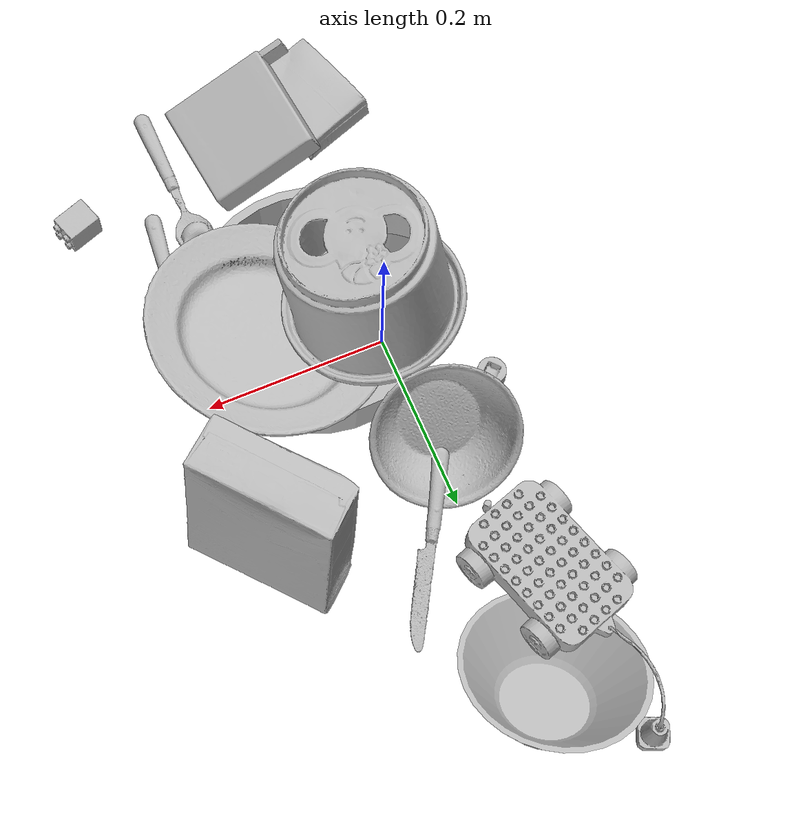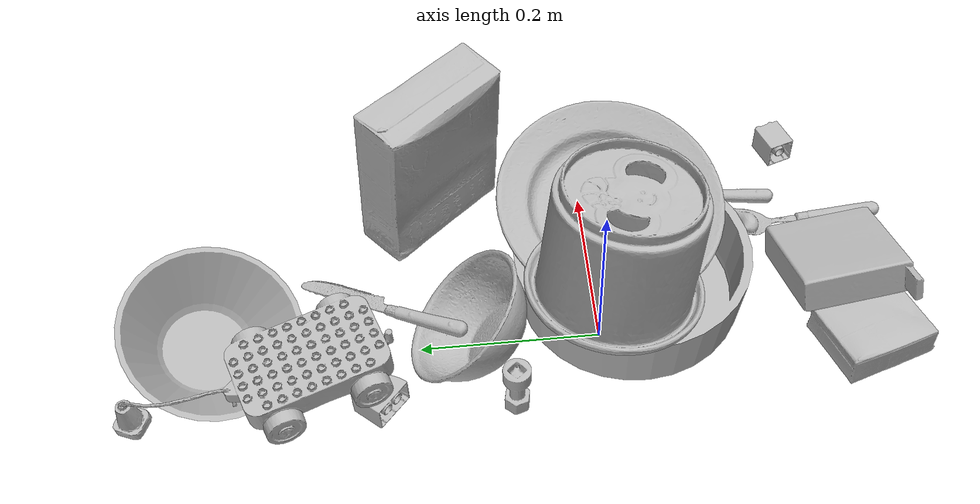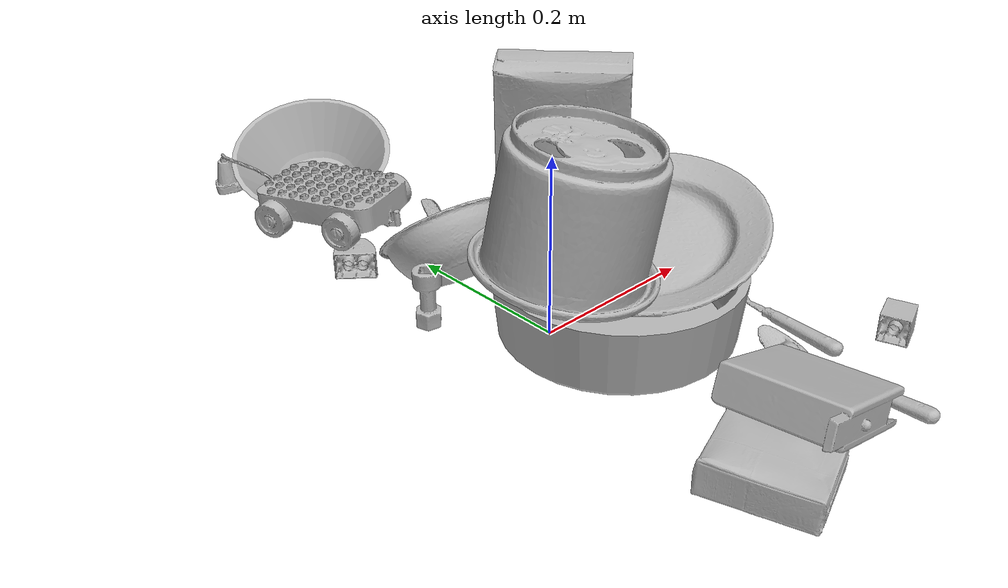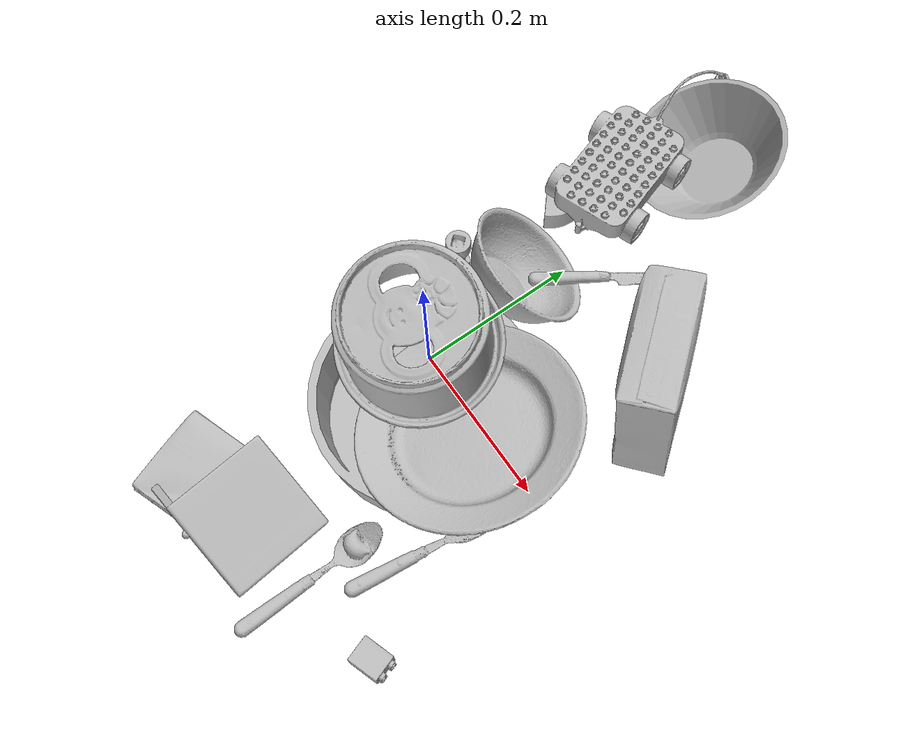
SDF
<sdf version="1.4">
  <world name="default">
    <light name="light1" type="point">
      <pose>0 0 1 0 0 0</pose>
      <diffuse>3 3 3 1</diffuse>
      <specular>3 3 3 1</specular>
    </light>
    <light name="light2" type="point">
      <pose>0 0.5 2 0 0 0</pose>
      <diffuse>1 1 1 1</diffuse>
      <specular>1 1 1 1</specular>
    </light>
    <light name="light3" type="point">
      <pose>0 0.5 2 0 0 0</pose>
      <diffuse>3 3 3 1</diffuse>
      <specular>3 3 3 1</specular>
    </light>
    <scene>
      <ambient>0.7 0.7 0.7</ambient>
    </scene>
    <model name="plate1">
      <link name="link_plate1">
        <collision name="default">
          <geometry>
            <mesh>
              <uri>model://plate/collision_meshes/collision.obj</uri>
              <scale>1.0 1.0 1.0</scale>
            </mesh>
          </geometry>
          <surface>
            <friction>
              <ode>
                <mu>0.5</mu>
                <mu2>0.5</mu2>
              </ode>
            </friction>
          <contact>
        <ode>
            <max_vel>0</max_vel>
            <min_depth>0.0001</min_depth>
            <kp>1e8</kp>
        </ode>
    </contact></surface>
        </collision>
        <visual name="default">
          <geometry>
            <mesh>
              <uri>model://plate/visual_meshes/visual.dae</uri>
              <scale>1.0 1.0 1.0</scale>
            </mesh>
          </geometry>
        </visual>
        <inertial>
          <mass>0.2518167495727539</mass>
          <pose>-0.000604460306931287 0.0002782583760563284 -0.001056198962032795 0.0022187362427659595 -0.003225514577586686 0.4526257716004426</pose>
          <inertia>
            <ixx>0.0011780038</ixx>
            <iyy>0.001166737</iyy>
            <izz>0.0023039998</izz>
            <ixy>0</ixy>
            <ixz>0</ixz>
            <iyz>0</iyz>
          </inertia>
        </inertial>
      </link>
      <pose>0.12130340933799744 -0.025377176702022552 0.08175140619277954 -0.20991426727223256 0.17602870464344783 2.509527441176686</pose>
    </model>
    <model name="plate2">
      <link name="link_plate2">
        <collision name="default">
          <geometry>
            <mesh>
              <uri>model://pan_tefal/collision_meshes/collision.obj</uri>
              <scale>1.0 1.0 1.0</scale>
            </mesh>
          </geometry>
          <surface>
            <friction>
              <ode>
                <mu>0.5</mu>
                <mu2>0.5</mu2>
              </ode>
            </friction>
          <contact>
        <ode>
            <max_vel>0</max_vel>
            <min_depth>0.0001</min_depth>
            <kp>1e8</kp>
        </ode>
    </contact></surface>
        </collision>
        <visual name="default">
          <geometry>
            <mesh>
              <uri>model://pan_tefal/visual_meshes/visual.dae</uri>
              <scale>1.0 1.0 1.0</scale>
            </mesh>
          </geometry>
        </visual>
        <inertial>
          <mass>1.062379002571106</mass>
          <pose>-0.00018001841090153903 3.2791107514640316e-05 -0.008514937944710255 0.0008190335190592257 -0.00033013878845789875 -0.3318630487039029</pose>
          <inertia>
            <ixx>0.0073335525</ixx>
            <iyy>0.007380832</iyy>
            <izz>0.013499655</izz>
            <ixy>0</ixy>
            <ixz>0</ixz>
            <iyz>0</iyz>
          </inertia>
        </inertial>
      </link>
      <pose>0.05741938576102257 -0.042099494487047195 0.03805015981197357 -1.0658867907320177e-06 -1.8436772204305295e-06 -0.8048830366576406</pose>
    </model>
    <model name="bowl1">
      <link name="link_bowl1">
        <collision name="default">
          <geometry>
            <mesh>
              <uri>model://bowl/collision_meshes/collision.obj</uri>
              <scale>1.0 1.0 1.0</scale>
            </mesh>
          </geometry>
          <surface>
            <friction>
              <ode>
                <mu>0.5</mu>
                <mu2>0.5</mu2>
              </ode>
            </friction>
          <contact>
        <ode>
            <max_vel>0</max_vel>
            <min_depth>0.0001</min_depth>
            <kp>1e8</kp>
        </ode>
    </contact></surface>
        </collision>
        <visual name="default">
          <geometry>
            <mesh>
              <uri>model://bowl/visual_meshes/visual.dae</uri>
              <scale>1.0 1.0 1.0</scale>
            </mesh>
          </geometry>
        </visual>
        <inertial>
          <mass>0.06917417049407959</mass>
          <pose>0.00020445069822017103 -0.0010302119189873338 -0.0008042645640671253 -0.015764106225313407 0.014546789960746879 0.7140402093907182</pose>
          <inertia>
            <ixx>0.00015889853</ixx>
            <iyy>0.00015534814</iyy>
            <izz>0.000267322</izz>
            <ixy>0</ixy>
            <ixz>0</ixz>
            <iyz>0</iyz>
          </inertia>
        </inertial>
      </link>
      <pose>-0.010548732243478298 0.13395904004573822 0.05162498727440834 -0.09165097669358792 0.7678210641024807 1.226059408901738</pose>
    </model>
    <model name="bowl2">
      <link name="link_bowl2">
        <collision name="default">
          <geometry>
            <mesh>
              <uri>model://bowl_a/collision_meshes/collision.obj</uri>
              <scale>1.0 1.0 1.0</scale>
            </mesh>
          </geometry>
          <surface>
            <friction>
              <ode>
                <mu>0.5</mu>
                <mu2>0.5</mu2>
              </ode>
            </friction>
          <contact>
        <ode>
            <max_vel>0</max_vel>
            <min_depth>0.0001</min_depth>
            <kp>1e8</kp>
        </ode>
    </contact></surface>
        </collision>
        <visual name="default">
          <geometry>
            <mesh>
              <uri>model://bowl_a/visual_meshes/visual.dae</uri>
              <scale>1.0 1.0 1.0</scale>
            </mesh>
          </geometry>
        </visual>
        <inertial>
          <mass>0.33581992983818054</mass>
          <pose>0.00027867587050423026 4.7312365495599806e-05 -0.0013765293406322598 -0.0009805275277335347 -0.0010938264345752996 -0.19124334191203107</pose>
          <inertia>
            <ixx>0.00095609494</ixx>
            <iyy>0.0009619646</iyy>
            <izz>0.0017004515</izz>
            <ixy>0</ixy>
            <ixz>0</ixz>
            <iyz>0</iyz>
          </inertia>
        </inertial>
      </link>
      <pose>0.0007211879128590226 0.4243635833263397 0.048508983105421066 -0.2068242934572515 -0.33562234743912706 1.4053863130247186</pose>
    </model>
    <model name="silverware1">
      <link name="link_silverware1">
        <collision name="default">
          <geometry>
            <mesh>
              <uri>model://spoon/collision_meshes/collision.obj</uri>
              <scale>1.0 1.0 1.0</scale>
            </mesh>
          </geometry>
          <surface>
            <friction>
              <ode>
                <mu>0.5</mu>
                <mu2>0.5</mu2>
              </ode>
            </friction>
          <contact>
        <ode>
            <max_vel>0</max_vel>
            <min_depth>0.0001</min_depth>
            <kp>1e8</kp>
        </ode>
    </contact></surface>
        </collision>
        <visual name="default">
          <geometry>
            <mesh>
              <uri>model://spoon/visual_meshes/visual.dae</uri>
              <scale>1.0 1.0 1.0</scale>
            </mesh>
          </geometry>
        </visual>
        <inertial>
          <mass>0.02635110728442669</mass>
          <pose>-0.005526317283511162 -0.0016034177970141172 -0.0007271651993505657 0.03521639754710896 -0.03906583271405073 0.0061506130160543454</pose>
          <inertia>
            <ixx>1.4656912e-06</ixx>
            <iyy>0.0001002651</iyy>
            <izz>0.00010098792</izz>
            <ixy>0</ixy>
            <ixz>0</ixz>
            <iyz>0</iyz>
          </inertia>
        </inertial>
      </link>
      <pose>0.14093099534511566 -0.25908881425857544 0.00838526338338852 0.006731908713252695 0.026892987784411123 1.5989448851853492</pose>
    </model>
    <model name="box1">
      <link name="link_box1">
        <collision name="default">
          <geometry>
            <mesh>
              <uri>model://cracker_box/collision_meshes/collision.obj</uri>
              <scale>1.0 1.0 1.0</scale>
            </mesh>
          </geometry>
          <surface>
            <friction>
              <ode>
                <mu>0.5</mu>
                <mu2>0.5</mu2>
              </ode>
            </friction>
          <contact>
        <ode>
            <max_vel>0</max_vel>
            <min_depth>0.0001</min_depth>
            <kp>1e8</kp>
        </ode>
    </contact></surface>
        </collision>
        <visual name="default">
          <geometry>
            <mesh>
              <uri>model://cracker_box/visual_meshes/visual.dae</uri>
              <scale>1.0 1.0 1.0</scale>
            </mesh>
          </geometry>
        </visual>
        <inertial>
          <mass>1.9942995309829712</mass>
          <pose>0.0009464178583584726 0.00025434247800149024 -0.0017029533628374338 -0.00031620747948387436 -0.011106490532043566 0.0025467943028284904</pose>
          <inertia>
            <ixx>0.005072607</ixx>
            <iyy>0.008375872</iyy>
            <izz>0.011953138</izz>
            <ixy>0</ixy>
            <ixz>0</ixz>
            <iyz>0</iyz>
          </inertia>
        </inertial>
      </link>
      <pose>0.19372785091400146 0.1726444810628891 0.10714136064052582 -3.0310277648906174 -1.500059192781666 -2.554628313749724</pose>
    </model>
    <model name="box2">
      <link name="link_box2">
        <collision name="default">
          <geometry>
            <mesh>
              <uri>model://pudding_box/collision_meshes/collision.obj</uri>
              <scale>1.0 1.0 1.0</scale>
            </mesh>
          </geometry>
          <surface>
            <friction>
              <ode>
                <mu>0.5</mu>
                <mu2>0.5</mu2>
              </ode>
            </friction>
          <contact>
        <ode>
            <max_vel>0</max_vel>
            <min_depth>0.0001</min_depth>
            <kp>1e8</kp>
        </ode>
    </contact></surface>
        </collision>
        <visual name="default">
          <geometry>
            <mesh>
              <uri>model://pudding_box/visual_meshes/visual.dae</uri>
              <scale>1.0 1.0 1.0</scale>
            </mesh>
          </geometry>
        </visual>
        <inertial>
          <mass>0.5201411247253418</mass>
          <pose>0.0004894821904599667 0.0008067885646596551 -0.0005188828217796981 0.00521310178321913 -0.006603799649863257 0.020079825157321304</pose>
          <inertia>
            <ixx>0.0005879929</ixx>
            <iyy>0.00039560578</iyy>
            <izz>0.00086832506</izz>
            <ixy>0</ixy>
            <ixz>0</ixz>
            <iyz>0</iyz>
          </inertia>
        </inertial>
      </link>
      <pose>-0.03472497686743736 -0.2998199760913849 0.019072044640779495 3.105159745231294 -0.04420064271743649 -2.7950287605449993</pose>
    </model>
    <model name="cup1">
      <link name="link_cup1">
        <collision name="default">
          <geometry>
            <mesh>
              <uri>model://i_cups/collision_meshes/collision.obj</uri>
              <scale>2.0 2.0 2.0</scale>
            </mesh>
          </geometry>
          <surface>
            <friction>
              <ode>
                <mu>0.5</mu>
                <mu2>0.5</mu2>
              </ode>
            </friction>
          <contact>
        <ode>
            <max_vel>0</max_vel>
            <min_depth>0.0001</min_depth>
            <kp>1e8</kp>
        </ode>
    </contact></surface>
        </collision>
        <visual name="default">
          <geometry>
            <mesh>
              <uri>model://i_cups/visual_meshes/visual.dae</uri>
              <scale>2.0 2.0 2.0</scale>
            </mesh>
          </geometry>
        </visual>
        <inertial>
          <mass>0.946932315826416</mass>
          <pose>0.00022480011102743447 0.0003359477559570223 -0.0017158038681373 -0.02898277199923076 -0.03987335280003036 -0.34591530516328983</pose>
          <inertia>
            <ixx>0.005244167</ixx>
            <iyy>0.0052903723</iyy>
            <izz>0.005861205</izz>
            <ixy>0</ixy>
            <ixz>0</ixz>
            <iyz>0</iyz>
          </inertia>
        </inertial>
      </link>
      <pose>0.013083124533295631 -0.02177540585398674 0.15194788575172424 -3.0369884875629887 0.12856930947299708 -0.08568960625184446</pose>
    </model>
    <model name="silverware2">
      <link name="link_silverware2">
        <collision name="default">
          <geometry>
            <mesh>
              <uri>model://fork/collision_meshes/collision.obj</uri>
              <scale>1.0 1.0 1.0</scale>
            </mesh>
          </geometry>
          <surface>
            <friction>
              <ode>
                <mu>0.5</mu>
                <mu2>0.5</mu2>
              </ode>
            </friction>
          <contact>
        <ode>
            <max_vel>0</max_vel>
            <min_depth>0.0001</min_depth>
            <kp>1e8</kp>
        </ode>
    </contact></surface>
        </collision>
        <visual name="default">
          <geometry>
            <mesh>
              <uri>model://fork/visual_meshes/visual.dae</uri>
              <scale>1.0 1.0 1.0</scale>
            </mesh>
          </geometry>
        </visual>
        <inertial>
          <mass>0.03207480534911156</mass>
          <pose>-0.02957005240023136 0.00046588238910771906 0.0003218861820641905 -0.013551414501779666 -0.010977842682601763 0.014453906756127453</pose>
          <inertia>
            <ixx>1.1244033e-06</ixx>
            <iyy>8.373807e-05</iyy>
            <izz>8.424099e-05</izz>
            <ixy>0</ixy>
            <ixz>0</ixz>
            <iyz>0</iyz>
          </inertia>
        </inertial>
      </link>
      <pose>0.18962417542934418 -0.13764223456382751 0.007446623407304287 -3.063494515971306 0.002835868402312807 1.447435238369739</pose>
    </model>
    <model name="silverware3">
      <link name="link_silverware3">
        <collision name="default">
          <geometry>
            <mesh>
              <uri>model://knife/collision_meshes/collision.obj</uri>
              <scale>1.0 1.0 1.0</scale>
            </mesh>
          </geometry>
          <surface>
            <friction>
              <ode>
                <mu>0.5</mu>
                <mu2>0.5</mu2>
              </ode>
            </friction>
          <contact>
        <ode>
            <max_vel>0</max_vel>
            <min_depth>0.0001</min_depth>
            <kp>1e8</kp>
        </ode>
    </contact></surface>
        </collision>
        <visual name="default">
          <geometry>
            <mesh>
              <uri>model://knife/visual_meshes/visual.dae</uri>
              <scale>1.0 1.0 1.0</scale>
            </mesh>
          </geometry>
        </visual>
        <inertial>
          <mass>0.02260335348546505</mass>
          <pose>-0.023785259574651718 0.0015275129117071629 5.062025593360886e-05 0.073049853839256 0.017248417767033373 -0.0074098225522862896</pose>
          <inertia>
            <ixx>6.41575e-07</ixx>
            <iyy>8.6838445e-05</iyy>
            <izz>8.704508e-05</izz>
            <ixy>0</ixy>
            <ixz>0</ixz>
            <iyz>0</iyz>
          </inertia>
        </inertial>
      </link>
      <pose>0.0507737472653389 0.23875346779823303 0.019893767312169075 -0.24677186726764763 0.14140560447324238 1.0396495933952492</pose>
    </model>
    <model name="toy1">
      <link name="link_toy1">
        <collision name="default">
          <geometry>
            <mesh>
              <uri>model://nine_hole_peg_test/collision_meshes/collision.obj</uri>
              <scale>1.0 1.0 1.0</scale>
            </mesh>
          </geometry>
          <surface>
            <friction>
              <ode>
                <mu>0.5</mu>
                <mu2>0.5</mu2>
              </ode>
            </friction>
          <contact>
        <ode>
            <max_vel>0</max_vel>
            <min_depth>0.0001</min_depth>
            <kp>1e8</kp>
        </ode>
    </contact></surface>
        </collision>
        <visual name="default">
          <geometry>
            <mesh>
              <uri>model://nine_hole_peg_test/visual_meshes/visual.dae</uri>
              <scale>1.0 1.0 1.0</scale>
            </mesh>
          </geometry>
        </visual>
        <inertial>
          <mass>0.3368244469165802</mass>
          <pose>-0.0046173869632184505 -0.009647615253925323 2.6460689696250483e-05 -0.001466679946039042 0.000719417968587533 -0.6342416610336568</pose>
          <inertia>
            <ixx>0.00052668044</ixx>
            <iyy>0.000491756</iyy>
            <izz>0.00092289934</izz>
            <ixy>0</ixy>
            <ixz>0</ixz>
            <iyz>0</iyz>
          </inertia>
        </inertial>
      </link>
      <pose>0.04139300063252449 -0.28341397643089294 0.045230671763420105 2.811050069482551 -0.03922975894835523 -1.4536395162414573</pose>
    </model>
    <model name="toy2">
      <link name="link_toy2">
        <collision name="default">
          <geometry>
            <mesh>
              <uri>model://c_toy_airplane/collision_meshes/collision.obj</uri>
              <scale>1.0 1.0 1.0</scale>
            </mesh>
          </geometry>
          <surface>
            <friction>
              <ode>
                <mu>0.5</mu>
                <mu2>0.5</mu2>
              </ode>
            </friction>
          <contact>
        <ode>
            <max_vel>0</max_vel>
            <min_depth>0.0001</min_depth>
            <kp>1e8</kp>
        </ode>
    </contact></surface>
        </collision>
        <visual name="default">
          <geometry>
            <mesh>
              <uri>model://c_toy_airplane/visual_meshes/visual.dae</uri>
              <scale>1.0 1.0 1.0</scale>
            </mesh>
          </geometry>
        </visual>
        <inertial>
          <mass>0.025849465280771255</mass>
          <pose>-0.000230242803809233 -4.4294804979472246e-07 -0.006080531980842352 -0.006193997552816779 -0.016797268968147806 0.7655666586292194</pose>
          <inertia>
            <ixx>1.1869546e-05</ixx>
            <iyy>1.1836047e-05</iyy>
            <izz>2.7867347e-06</izz>
            <ixy>0</ixy>
            <ixz>0</ixz>
            <iyz>0</iyz>
          </inertia>
        </inertial>
      </link>
      <pose>-0.080657459795475 0.09994752705097198 0.03344076871871948 3.1279185056126644 -0.009181106651600487 1.6097419429940396</pose>
    </model>
    <model name="toy3">
      <link name="link_toy3">
        <collision name="default">
          <geometry>
            <mesh>
              <uri>model://g_lego_duplo/collision_meshes/collision.obj</uri>
              <scale>1.0 1.0 1.0</scale>
            </mesh>
          </geometry>
          <surface>
            <friction>
              <ode>
                <mu>0.5</mu>
                <mu2>0.5</mu2>
              </ode>
            </friction>
          <contact>
        <ode>
            <max_vel>0</max_vel>
            <min_depth>0.0001</min_depth>
            <kp>1e8</kp>
        </ode>
    </contact></surface>
        </collision>
        <visual name="default">
          <geometry>
            <mesh>
              <uri>model://g_lego_duplo/visual_meshes/visual.dae</uri>
              <scale>1.0 1.0 1.0</scale>
            </mesh>
          </geometry>
        </visual>
        <inertial>
          <mass>0.44857048988342285</mass>
          <pose>-0.05004768818616867 0.0017554624937474728 0.0038806761149317026 0.010962989380518968 0.03810827633819491 -0.09653029550410545</pose>
          <inertia>
            <ixx>0.0006499838</ixx>
            <iyy>0.00196511</iyy>
            <izz>0.0024584262</izz>
            <ixy>0</ixy>
            <ixz>0</ixz>
            <iyz>0</iyz>
          </inertia>
        </inertial>
      </link>
      <pose>-0.06207698956131935 0.3724164068698883 0.05685590207576752 -0.03524096945817141 0.0637665870651008 1.9000011171645246</pose>
    </model>
    <model name="toy4">
      <link name="link_toy4">
        <collision name="default">
          <geometry>
            <mesh>
              <uri>model://b_lego_duplo/collision_meshes/collision.obj</uri>
              <scale>1.0 1.0 1.0</scale>
            </mesh>
          </geometry>
          <surface>
            <friction>
              <ode>
                <mu>0.5</mu>
                <mu2>0.5</mu2>
              </ode>
            </friction>
          <contact>
        <ode>
            <max_vel>0</max_vel>
            <min_depth>0.0001</min_depth>
            <kp>1e8</kp>
        </ode>
    </contact></surface>
        </collision>
        <visual name="default">
          <geometry>
            <mesh>
              <uri>model://b_lego_duplo/visual_meshes/visual.dae</uri>
              <scale>1.0 1.0 1.0</scale>
            </mesh>
          </geometry>
        </visual>
        <inertial>
          <mass>0.028142115101218224</mass>
          <pose>-0.00011053047637687996 -9.15253895072965e-06 0.0019294291269034147 -0.03749502345465157 -0.02635389323626884 0.4519044936865358</pose>
          <inertia>
            <ixx>5.759495e-06</ixx>
            <iyy>5.798213e-06</iyy>
            <izz>5.1315224e-06</izz>
            <ixy>0</ixy>
            <ixz>0</ixz>
            <iyz>0</iyz>
          </inertia>
        </inertial>
      </link>
      <pose>0.2583443522453308 -0.2506488859653473 0.01621655933558941 -1.5802390258202077 0.000320258512064952 -1.2416942653766665</pose>
    </model>
    <model name="toy5">
      <link name="link_toy5">
        <collision name="default">
          <geometry>
            <mesh>
              <uri>model://d_lego_duplo/collision_meshes/collision.obj</uri>
              <scale>1.0 1.0 1.0</scale>
            </mesh>
          </geometry>
          <surface>
            <friction>
              <ode>
                <mu>0.5</mu>
                <mu2>0.5</mu2>
              </ode>
            </friction>
          <contact>
        <ode>
            <max_vel>0</max_vel>
            <min_depth>0.0001</min_depth>
            <kp>1e8</kp>
        </ode>
    </contact></surface>
        </collision>
        <visual name="default">
          <geometry>
            <mesh>
              <uri>model://d_lego_duplo/visual_meshes/visual.dae</uri>
              <scale>1.0 1.0 1.0</scale>
            </mesh>
          </geometry>
        </visual>
        <inertial>
          <mass>0.03456217050552368</mass>
          <pose>0.00283056334592402 0.00016366186900995672 0.0008589798817411065 0.08010865489808279 -0.3835519084219494 0.001029683970252444</pose>
          <inertia>
            <ixx>6.6907255e-06</ixx>
            <iyy>9.495956e-06</iyy>
            <izz>9.1575175e-06</izz>
            <ixy>0</ixy>
            <ixz>0</ixz>
            <iyz>0</iyz>
          </inertia>
        </inertial>
      </link>
      <pose>-0.0652792900800705 0.24660417437553406 0.016497284173965454 1.5796303597062098 0.015554719827465247 2.4183424091476255</pose>
    </model>
  <physics type="ode">
      <max_contacts>50</max_contacts>
      <ode>
        <solver>
          <type>quick</type>
          <iters>75</iters>
        </solver>
        <constraints>
          <contact_max_correcting_vel>0</contact_max_correcting_vel>
          <contact_surface_layer>0</contact_surface_layer>
        </constraints>
      </ode>
    </physics></world>
</sdf>
